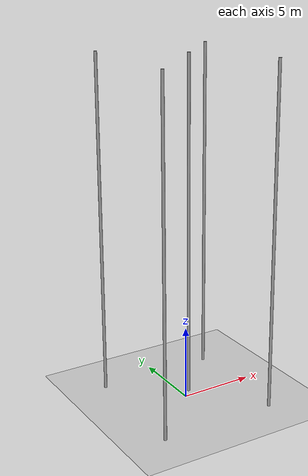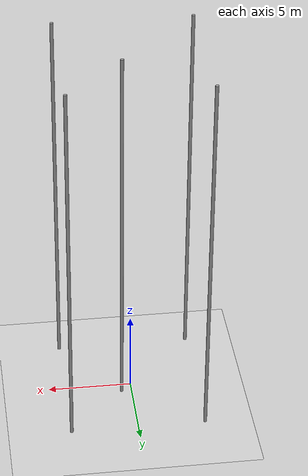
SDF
<sdf version="1.7">
 <world name="default">
  <light name="sun" type="directional">
   <pose>0 0 10 0 -0 0</pose>
   <diffuse>0.8 0.8 0.8 1</diffuse>
   <specular>0.2 0.2 0.2 1</specular>
   <attenuation>
    <range>1000</range>
    <constant>0.9</constant>
    <linear>0.01</linear>
    <quadratic>0.001</quadratic>
   </attenuation>
   <direction>-0.5 0.1 -0.9</direction>
   <spot><inner_angle>0</inner_angle><outer_angle>0</outer_angle><falloff>0</falloff></spot>
  </light>
  <model name="ground_plane">
   <static>1</static>
   <link name="link">
    <collision name="collision">
     <geometry><plane><normal>0 0 1</normal><size>100 100</size></plane></geometry>
     <surface>
      <contact><collide_bitmask>65535</collide_bitmask></contact>
      <friction><ode><mu>100</mu><mu2>50</mu2></ode></friction>
     </surface>
    </collision>
    <visual name="visual">
     <cast_shadows>0</cast_shadows>
     <geometry><plane><normal>0 0 1</normal><size>100 100</size></plane></geometry>
     <material>
      <script><uri>file://media/materials/scripts/gazebo.material</uri><name>Gazebo/Grey</name></script>
     </material>
    </visual>
   </link>
  </model>
  <gravity>0 0 -9.8</gravity>
  <magnetic_field>6e-06 2.3e-05 -4.2e-05</magnetic_field>
  <atmosphere type="adiabatic"/>
  <physics type="ode">
   <max_step_size>0.001</max_step_size>
   <real_time_factor>1</real_time_factor>
   <real_time_update_rate>1000</real_time_update_rate>
  </physics>
  <scene><ambient>0.4 0.4 0.4 1</ambient><background>0.7 0.7 0.7 1</background><shadows>1</shadows></scene>
  <spherical_coordinates>
   <surface_model>EARTH_WGS84</surface_model>
   <latitude_deg>0</latitude_deg>
   <longitude_deg>0</longitude_deg>
   <elevation>0</elevation>
   <heading_deg>0</heading_deg>
  </spherical_coordinates>
  <model name="unit_cylinder">
   <link name="link">
    <inertial>
     <mass>1</mass>
     <inertia><ixx>0.145833</ixx><ixy>0</ixy><ixz>0</ixz><iyy>0.145833</iyy><iyz>0</iyz><izz>0.125</izz></inertia>
    </inertial>
    <gravity>0</gravity>
    <visual name="visual">
     <geometry><cylinder><radius>0.1</radius><length>23</length></cylinder></geometry>
     <material>
      <script><name>Gazebo/Grey</name><uri>file://media/materials/scripts/gazebo.material</uri></script>
      <shader type="pixel"><normal_map>__default__</normal_map></shader>
      <ambient>0.3 0.3 0.3 1</ambient>
      <diffuse>0.7 0.7 0.7 1</diffuse>
      <specular>0.01 0.01 0.01 1</specular>
      <emissive>0 0 0 1</emissive>
     </material>
    </visual>
   </link>
   <static>0</static>
   <pose>0.6 0.6 11.5 4e-06 4e-06 -0</pose>
  </model>
  <model name="unit_cylinder_clone">
   <link name="link">
    <inertial>
     <mass>1</mass>
     <inertia><ixx>0.145833</ixx><ixy>0</ixy><ixz>0</ixz><iyy>0.145833</iyy><iyz>0</iyz><izz>0.125</izz></inertia>
    </inertial>
    <gravity>0</gravity>
    <visual name="visual">
     <geometry><cylinder><radius>0.1</radius><length>23</length></cylinder></geometry>
     <material>
      <script><name>Gazebo/Grey</name><uri>file://media/materials/scripts/gazebo.material</uri></script>
      <shader type="pixel"><normal_map>__default__</normal_map></shader>
      <ambient>0.3 0.3 0.3 1</ambient>
      <diffuse>0.7 0.7 0.7 1</diffuse>
      <specular>0.01 0.01 0.01 1</specular>
      <emissive>0 0 0 1</emissive>
     </material>
    </visual>
   </link>
   <static>0</static>
   <pose>4 4 11.5 4e-06 4e-06 -0</pose>
  </model>
  <model name="unit_cylinder_clone_0">
   <link name="link">
    <inertial>
     <mass>1</mass>
     <inertia><ixx>0.145833</ixx><ixy>0</ixy><ixz>0</ixz><iyy>0.145833</iyy><iyz>0</iyz><izz>0.125</izz></inertia>
    </inertial>
    <gravity>0</gravity>
    <visual name="visual">
     <geometry><cylinder><radius>0.1</radius><length>23</length></cylinder></geometry>
     <material>
      <script><name>Gazebo/Grey</name><uri>file://media/materials/scripts/gazebo.material</uri></script>
      <shader type="pixel"><normal_map>__default__</normal_map></shader>
      <ambient>0.3 0.3 0.3 1</ambient>
      <diffuse>0.7 0.7 0.7 1</diffuse>
      <specular>0.01 0.01 0.01 1</specular>
      <emissive>0 0 0 1</emissive>
     </material>
    </visual>
   </link>
   <static>0</static>
   <pose>4 -4 11.5 4e-06 4e-06 -0</pose>
  </model>
  <model name="unit_cylinder_clone_1">
   <link name="link">
    <inertial>
     <mass>1</mass>
     <inertia><ixx>0.145833</ixx><ixy>0</ixy><ixz>0</ixz><iyy>0.145833</iyy><iyz>0</iyz><izz>0.125</izz></inertia>
    </inertial>
    <gravity>0</gravity>
    <visual name="visual">
     <geometry><cylinder><radius>0.1</radius><length>23</length></cylinder></geometry>
     <material>
      <script><name>Gazebo/Grey</name><uri>file://media/materials/scripts/gazebo.material</uri></script>
      <shader type="pixel"><normal_map>__default__</normal_map></shader>
      <ambient>0.3 0.3 0.3 1</ambient>
      <diffuse>0.7 0.7 0.7 1</diffuse>
      <specular>0.01 0.01 0.01 1</specular>
      <emissive>0 0 0 1</emissive>
     </material>
    </visual>
   </link>
   <static>0</static>
   <pose>-4 -4 11.5 4e-06 4e-06 -0</pose>
  </model>
  <model name="unit_cylinder_clone_2">
   <link name="link">
    <inertial>
     <mass>1</mass>
     <inertia><ixx>0.145833</ixx><ixy>0</ixy><ixz>0</ixz><iyy>0.145833</iyy><iyz>0</iyz><izz>0.125</izz></inertia>
    </inertial>
    <gravity>0</gravity>
    <visual name="visual">
     <geometry><cylinder><radius>0.1</radius><length>23</length></cylinder></geometry>
     <material>
      <script><name>Gazebo/Grey</name><uri>file://media/materials/scripts/gazebo.material</uri></script>
      <shader type="pixel"><normal_map>__default__</normal_map></shader>
      <ambient>0.3 0.3 0.3 1</ambient>
      <diffuse>0.7 0.7 0.7 1</diffuse>
      <specular>0.01 0.01 0.01 1</specular>
      <emissive>0 0 0 1</emissive>
     </material>
    </visual>
   </link>
   <static>0</static>
   <pose>-4 4 11.5 4e-06 4e-06 -0</pose>
  </model>
 </world>
</sdf>
